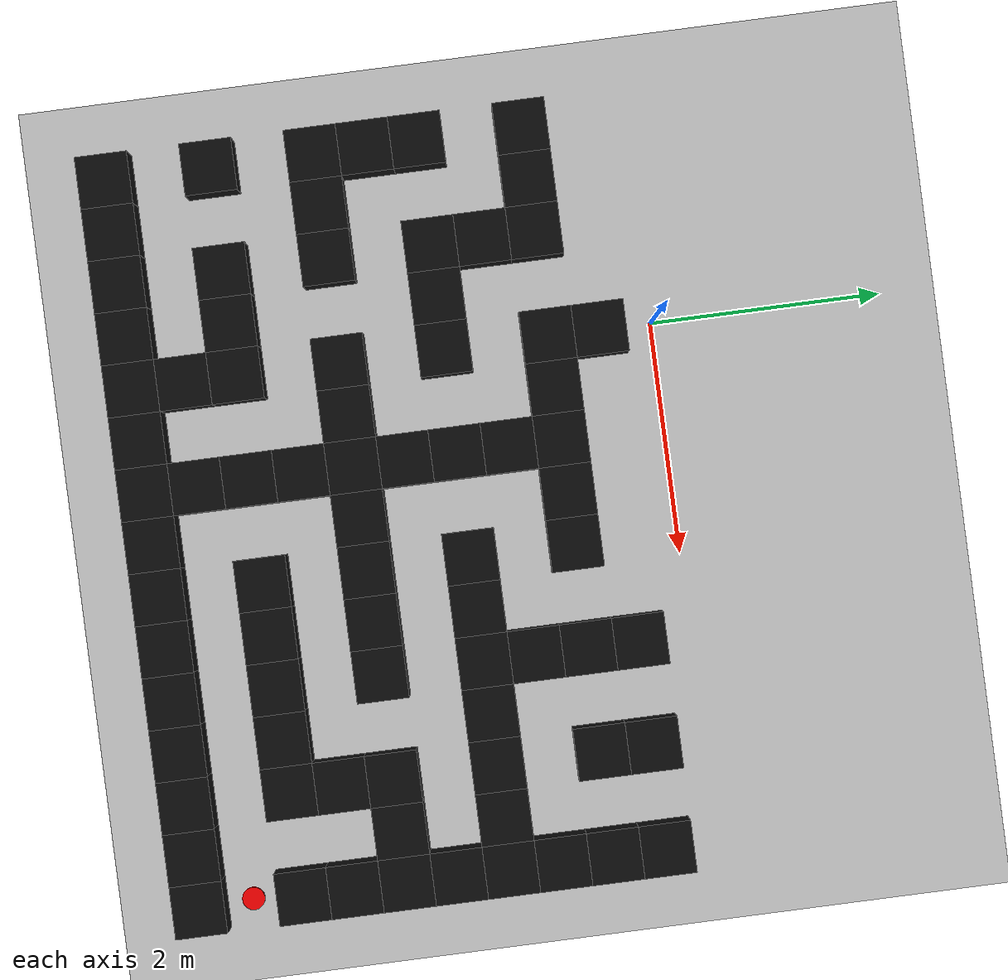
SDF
<sdf version="1.9">
 <world name="complex_maze_world">
  <model name="ground_plane">
   <static>true</static>
   <link name="link">
    <collision name="collision">
     <geometry><plane><normal>0 0 1</normal><size>30 30</size></plane></geometry>
    </collision>
    <visual name="visual">
     <geometry><plane><normal>0 0 1</normal><size>30 30</size></plane></geometry>
     <material><ambient>0.82 0.82 0.82 1</ambient><diffuse>0.82 0.82 0.82 1</diffuse></material>
    </visual>
   </link>
  </model>
  <model name="wall_125">
   <static>true</static>
   <pose>0.000 -0.450 0.140 0 0 0</pose>
   <link name="link">
    <collision name="collision"><geometry><box><size>0.450 0.450 0.280</size></box></geometry></collision>
    <visual name="visual">
     <geometry><box><size>0.450 0.450 0.280</size></box></geometry>
     <material><ambient>0.05 0.05 0.05 1</ambient><diffuse>0.05 0.05 0.05 1</diffuse></material>
    </visual>
   </link>
  </model>
  <model name="wall_126">
   <static>true</static>
   <pose>2.700 -0.450 0.140 0 0 0</pose>
   <link name="link">
    <collision name="collision"><geometry><box><size>0.450 0.450 0.280</size></box></geometry></collision>
    <visual name="visual">
     <geometry><box><size>0.450 0.450 0.280</size></box></geometry>
     <material><ambient>0.05 0.05 0.05 1</ambient><diffuse>0.05 0.05 0.05 1</diffuse></material>
    </visual>
   </link>
  </model>
  <model name="wall_127">
   <static>true</static>
   <pose>3.600 -0.450 0.140 0 0 0</pose>
   <link name="link">
    <collision name="collision"><geometry><box><size>0.450 0.450 0.280</size></box></geometry></collision>
    <visual name="visual">
     <geometry><box><size>0.450 0.450 0.280</size></box></geometry>
     <material><ambient>0.05 0.05 0.05 1</ambient><diffuse>0.05 0.05 0.05 1</diffuse></material>
    </visual>
   </link>
  </model>
  <model name="wall_128">
   <static>true</static>
   <pose>4.500 -0.450 0.140 0 0 0</pose>
   <link name="link">
    <collision name="collision"><geometry><box><size>0.450 0.450 0.280</size></box></geometry></collision>
    <visual name="visual">
     <geometry><box><size>0.450 0.450 0.280</size></box></geometry>
     <material><ambient>0.05 0.05 0.05 1</ambient><diffuse>0.05 0.05 0.05 1</diffuse></material>
    </visual>
   </link>
  </model>
  <model name="wall_134">
   <static>true</static>
   <pose>-1.800 -0.900 0.140 0 0 0</pose>
   <link name="link">
    <collision name="collision"><geometry><box><size>0.450 0.450 0.280</size></box></geometry></collision>
    <visual name="visual">
     <geometry><box><size>0.450 0.450 0.280</size></box></geometry>
     <material><ambient>0.05 0.05 0.05 1</ambient><diffuse>0.05 0.05 0.05 1</diffuse></material>
    </visual>
   </link>
  </model>
  <model name="wall_135">
   <static>true</static>
   <pose>-1.350 -0.900 0.140 0 0 0</pose>
   <link name="link">
    <collision name="collision"><geometry><box><size>0.450 0.450 0.280</size></box></geometry></collision>
    <visual name="visual">
     <geometry><box><size>0.450 0.450 0.280</size></box></geometry>
     <material><ambient>0.05 0.05 0.05 1</ambient><diffuse>0.05 0.05 0.05 1</diffuse></material>
    </visual>
   </link>
  </model>
  <model name="wall_136">
   <static>true</static>
   <pose>-0.900 -0.900 0.140 0 0 0</pose>
   <link name="link">
    <collision name="collision"><geometry><box><size>0.450 0.450 0.280</size></box></geometry></collision>
    <visual name="visual">
     <geometry><box><size>0.450 0.450 0.280</size></box></geometry>
     <material><ambient>0.05 0.05 0.05 1</ambient><diffuse>0.05 0.05 0.05 1</diffuse></material>
    </visual>
   </link>
  </model>
  <model name="wall_137">
   <static>true</static>
   <pose>0.000 -0.900 0.140 0 0 0</pose>
   <link name="link">
    <collision name="collision"><geometry><box><size>0.450 0.450 0.280</size></box></geometry></collision>
    <visual name="visual">
     <geometry><box><size>0.450 0.450 0.280</size></box></geometry>
     <material><ambient>0.05 0.05 0.05 1</ambient><diffuse>0.05 0.05 0.05 1</diffuse></material>
    </visual>
   </link>
  </model>
  <model name="wall_138">
   <static>true</static>
   <pose>0.450 -0.900 0.140 0 0 0</pose>
   <link name="link">
    <collision name="collision"><geometry><box><size>0.450 0.450 0.280</size></box></geometry></collision>
    <visual name="visual">
     <geometry><box><size>0.450 0.450 0.280</size></box></geometry>
     <material><ambient>0.05 0.05 0.05 1</ambient><diffuse>0.05 0.05 0.05 1</diffuse></material>
    </visual>
   </link>
  </model>
  <model name="wall_139">
   <static>true</static>
   <pose>0.900 -0.900 0.140 0 0 0</pose>
   <link name="link">
    <collision name="collision"><geometry><box><size>0.450 0.450 0.280</size></box></geometry></collision>
    <visual name="visual">
     <geometry><box><size>0.450 0.450 0.280</size></box></geometry>
     <material><ambient>0.05 0.05 0.05 1</ambient><diffuse>0.05 0.05 0.05 1</diffuse></material>
    </visual>
   </link>
  </model>
  <model name="wall_140">
   <static>true</static>
   <pose>1.350 -0.900 0.140 0 0 0</pose>
   <link name="link">
    <collision name="collision"><geometry><box><size>0.450 0.450 0.280</size></box></geometry></collision>
    <visual name="visual">
     <geometry><box><size>0.450 0.450 0.280</size></box></geometry>
     <material><ambient>0.05 0.05 0.05 1</ambient><diffuse>0.05 0.05 0.05 1</diffuse></material>
    </visual>
   </link>
  </model>
  <model name="wall_141">
   <static>true</static>
   <pose>1.800 -0.900 0.140 0 0 0</pose>
   <link name="link">
    <collision name="collision"><geometry><box><size>0.450 0.450 0.280</size></box></geometry></collision>
    <visual name="visual">
     <geometry><box><size>0.450 0.450 0.280</size></box></geometry>
     <material><ambient>0.05 0.05 0.05 1</ambient><diffuse>0.05 0.05 0.05 1</diffuse></material>
    </visual>
   </link>
  </model>
  <model name="wall_142">
   <static>true</static>
   <pose>2.700 -0.900 0.140 0 0 0</pose>
   <link name="link">
    <collision name="collision"><geometry><box><size>0.450 0.450 0.280</size></box></geometry></collision>
    <visual name="visual">
     <geometry><box><size>0.450 0.450 0.280</size></box></geometry>
     <material><ambient>0.05 0.05 0.05 1</ambient><diffuse>0.05 0.05 0.05 1</diffuse></material>
    </visual>
   </link>
  </model>
  <model name="wall_143">
   <static>true</static>
   <pose>3.600 -0.900 0.140 0 0 0</pose>
   <link name="link">
    <collision name="collision"><geometry><box><size>0.450 0.450 0.280</size></box></geometry></collision>
    <visual name="visual">
     <geometry><box><size>0.450 0.450 0.280</size></box></geometry>
     <material><ambient>0.05 0.05 0.05 1</ambient><diffuse>0.05 0.05 0.05 1</diffuse></material>
    </visual>
   </link>
  </model>
  <model name="wall_144">
   <static>true</static>
   <pose>4.500 -0.900 0.140 0 0 0</pose>
   <link name="link">
    <collision name="collision"><geometry><box><size>0.450 0.450 0.280</size></box></geometry></collision>
    <visual name="visual">
     <geometry><box><size>0.450 0.450 0.280</size></box></geometry>
     <material><ambient>0.05 0.05 0.05 1</ambient><diffuse>0.05 0.05 0.05 1</diffuse></material>
    </visual>
   </link>
  </model>
  <model name="wall_146">
   <static>true</static>
   <pose>-0.900 -1.350 0.140 0 0 0</pose>
   <link name="link">
    <collision name="collision"><geometry><box><size>0.450 0.450 0.280</size></box></geometry></collision>
    <visual name="visual">
     <geometry><box><size>0.450 0.450 0.280</size></box></geometry>
     <material><ambient>0.05 0.05 0.05 1</ambient><diffuse>0.05 0.05 0.05 1</diffuse></material>
    </visual>
   </link>
  </model>
  <model name="wall_147">
   <static>true</static>
   <pose>0.900 -1.350 0.140 0 0 0</pose>
   <link name="link">
    <collision name="collision"><geometry><box><size>0.450 0.450 0.280</size></box></geometry></collision>
    <visual name="visual">
     <geometry><box><size>0.450 0.450 0.280</size></box></geometry>
     <material><ambient>0.05 0.05 0.05 1</ambient><diffuse>0.05 0.05 0.05 1</diffuse></material>
    </visual>
   </link>
  </model>
  <model name="wall_148">
   <static>true</static>
   <pose>2.700 -1.350 0.140 0 0 0</pose>
   <link name="link">
    <collision name="collision"><geometry><box><size>0.450 0.450 0.280</size></box></geometry></collision>
    <visual name="visual">
     <geometry><box><size>0.450 0.450 0.280</size></box></geometry>
     <material><ambient>0.05 0.05 0.05 1</ambient><diffuse>0.05 0.05 0.05 1</diffuse></material>
    </visual>
   </link>
  </model>
  <model name="wall_149">
   <static>true</static>
   <pose>4.500 -1.350 0.140 0 0 0</pose>
   <link name="link">
    <collision name="collision"><geometry><box><size>0.450 0.450 0.280</size></box></geometry></collision>
    <visual name="visual">
     <geometry><box><size>0.450 0.450 0.280</size></box></geometry>
     <material><ambient>0.05 0.05 0.05 1</ambient><diffuse>0.05 0.05 0.05 1</diffuse></material>
    </visual>
   </link>
  </model>
  <model name="wall_156">
   <static>true</static>
   <pose>-1.800 -1.800 0.140 0 0 0</pose>
   <link name="link">
    <collision name="collision"><geometry><box><size>0.450 0.450 0.280</size></box></geometry></collision>
    <visual name="visual">
     <geometry><box><size>0.450 0.450 0.280</size></box></geometry>
     <material><ambient>0.05 0.05 0.05 1</ambient><diffuse>0.05 0.05 0.05 1</diffuse></material>
    </visual>
   </link>
  </model>
  <model name="wall_157">
   <static>true</static>
   <pose>-0.900 -1.800 0.140 0 0 0</pose>
   <link name="link">
    <collision name="collision"><geometry><box><size>0.450 0.450 0.280</size></box></geometry></collision>
    <visual name="visual">
     <geometry><box><size>0.450 0.450 0.280</size></box></geometry>
     <material><ambient>0.05 0.05 0.05 1</ambient><diffuse>0.05 0.05 0.05 1</diffuse></material>
    </visual>
   </link>
  </model>
  <model name="wall_158">
   <static>true</static>
   <pose>-0.450 -1.800 0.140 0 0 0</pose>
   <link name="link">
    <collision name="collision"><geometry><box><size>0.450 0.450 0.280</size></box></geometry></collision>
    <visual name="visual">
     <geometry><box><size>0.450 0.450 0.280</size></box></geometry>
     <material><ambient>0.05 0.05 0.05 1</ambient><diffuse>0.05 0.05 0.05 1</diffuse></material>
    </visual>
   </link>
  </model>
  <model name="wall_159">
   <static>true</static>
   <pose>0.000 -1.800 0.140 0 0 0</pose>
   <link name="link">
    <collision name="collision"><geometry><box><size>0.450 0.450 0.280</size></box></geometry></collision>
    <visual name="visual">
     <geometry><box><size>0.450 0.450 0.280</size></box></geometry>
     <material><ambient>0.05 0.05 0.05 1</ambient><diffuse>0.05 0.05 0.05 1</diffuse></material>
    </visual>
   </link>
  </model>
  <model name="wall_160">
   <static>true</static>
   <pose>0.900 -1.800 0.140 0 0 0</pose>
   <link name="link">
    <collision name="collision"><geometry><box><size>0.450 0.450 0.280</size></box></geometry></collision>
    <visual name="visual">
     <geometry><box><size>0.450 0.450 0.280</size></box></geometry>
     <material><ambient>0.05 0.05 0.05 1</ambient><diffuse>0.05 0.05 0.05 1</diffuse></material>
    </visual>
   </link>
  </model>
  <model name="wall_161">
   <static>true</static>
   <pose>1.800 -1.800 0.140 0 0 0</pose>
   <link name="link">
    <collision name="collision"><geometry><box><size>0.450 0.450 0.280</size></box></geometry></collision>
    <visual name="visual">
     <geometry><box><size>0.450 0.450 0.280</size></box></geometry>
     <material><ambient>0.05 0.05 0.05 1</ambient><diffuse>0.05 0.05 0.05 1</diffuse></material>
    </visual>
   </link>
  </model>
  <model name="wall_162">
   <static>true</static>
   <pose>2.250 -1.800 0.140 0 0 0</pose>
   <link name="link">
    <collision name="collision"><geometry><box><size>0.450 0.450 0.280</size></box></geometry></collision>
    <visual name="visual">
     <geometry><box><size>0.450 0.450 0.280</size></box></geometry>
     <material><ambient>0.05 0.05 0.05 1</ambient><diffuse>0.05 0.05 0.05 1</diffuse></material>
    </visual>
   </link>
  </model>
  <model name="wall_163">
   <static>true</static>
   <pose>2.700 -1.800 0.140 0 0 0</pose>
   <link name="link">
    <collision name="collision"><geometry><box><size>0.450 0.450 0.280</size></box></geometry></collision>
    <visual name="visual">
     <geometry><box><size>0.450 0.450 0.280</size></box></geometry>
     <material><ambient>0.05 0.05 0.05 1</ambient><diffuse>0.05 0.05 0.05 1</diffuse></material>
    </visual>
   </link>
  </model>
  <model name="wall_164">
   <static>true</static>
   <pose>3.150 -1.800 0.140 0 0 0</pose>
   <link name="link">
    <collision name="collision"><geometry><box><size>0.450 0.450 0.280</size></box></geometry></collision>
    <visual name="visual">
     <geometry><box><size>0.450 0.450 0.280</size></box></geometry>
     <material><ambient>0.05 0.05 0.05 1</ambient><diffuse>0.05 0.05 0.05 1</diffuse></material>
    </visual>
   </link>
  </model>
  <model name="wall_165">
   <static>true</static>
   <pose>3.600 -1.800 0.140 0 0 0</pose>
   <link name="link">
    <collision name="collision"><geometry><box><size>0.450 0.450 0.280</size></box></geometry></collision>
    <visual name="visual">
     <geometry><box><size>0.450 0.450 0.280</size></box></geometry>
     <material><ambient>0.05 0.05 0.05 1</ambient><diffuse>0.05 0.05 0.05 1</diffuse></material>
    </visual>
   </link>
  </model>
  <model name="wall_166">
   <static>true</static>
   <pose>4.050 -1.800 0.140 0 0 0</pose>
   <link name="link">
    <collision name="collision"><geometry><box><size>0.450 0.450 0.280</size></box></geometry></collision>
    <visual name="visual">
     <geometry><box><size>0.450 0.450 0.280</size></box></geometry>
     <material><ambient>0.05 0.05 0.05 1</ambient><diffuse>0.05 0.05 0.05 1</diffuse></material>
    </visual>
   </link>
  </model>
  <model name="wall_167">
   <static>true</static>
   <pose>4.500 -1.800 0.140 0 0 0</pose>
   <link name="link">
    <collision name="collision"><geometry><box><size>0.450 0.450 0.280</size></box></geometry></collision>
    <visual name="visual">
     <geometry><box><size>0.450 0.450 0.280</size></box></geometry>
     <material><ambient>0.05 0.05 0.05 1</ambient><diffuse>0.05 0.05 0.05 1</diffuse></material>
    </visual>
   </link>
  </model>
  <model name="wall_169">
   <static>true</static>
   <pose>-1.800 -2.250 0.140 0 0 0</pose>
   <link name="link">
    <collision name="collision"><geometry><box><size>0.450 0.450 0.280</size></box></geometry></collision>
    <visual name="visual">
     <geometry><box><size>0.450 0.450 0.280</size></box></geometry>
     <material><ambient>0.05 0.05 0.05 1</ambient><diffuse>0.05 0.05 0.05 1</diffuse></material>
    </visual>
   </link>
  </model>
  <model name="wall_170">
   <static>true</static>
   <pose>0.900 -2.250 0.140 0 0 0</pose>
   <link name="link">
    <collision name="collision"><geometry><box><size>0.450 0.450 0.280</size></box></geometry></collision>
    <visual name="visual">
     <geometry><box><size>0.450 0.450 0.280</size></box></geometry>
     <material><ambient>0.05 0.05 0.05 1</ambient><diffuse>0.05 0.05 0.05 1</diffuse></material>
    </visual>
   </link>
  </model>
  <model name="wall_171">
   <static>true</static>
   <pose>4.500 -2.250 0.140 0 0 0</pose>
   <link name="link">
    <collision name="collision"><geometry><box><size>0.450 0.450 0.280</size></box></geometry></collision>
    <visual name="visual">
     <geometry><box><size>0.450 0.450 0.280</size></box></geometry>
     <material><ambient>0.05 0.05 0.05 1</ambient><diffuse>0.05 0.05 0.05 1</diffuse></material>
    </visual>
   </link>
  </model>
  <model name="wall_176">
   <static>true</static>
   <pose>-1.800 -2.700 0.140 0 0 0</pose>
   <link name="link">
    <collision name="collision"><geometry><box><size>0.450 0.450 0.280</size></box></geometry></collision>
    <visual name="visual">
     <geometry><box><size>0.450 0.450 0.280</size></box></geometry>
     <material><ambient>0.05 0.05 0.05 1</ambient><diffuse>0.05 0.05 0.05 1</diffuse></material>
    </visual>
   </link>
  </model>
  <model name="wall_177">
   <static>true</static>
   <pose>-1.350 -2.700 0.140 0 0 0</pose>
   <link name="link">
    <collision name="collision"><geometry><box><size>0.450 0.450 0.280</size></box></geometry></collision>
    <visual name="visual">
     <geometry><box><size>0.450 0.450 0.280</size></box></geometry>
     <material><ambient>0.05 0.05 0.05 1</ambient><diffuse>0.05 0.05 0.05 1</diffuse></material>
    </visual>
   </link>
  </model>
  <model name="wall_178">
   <static>true</static>
   <pose>-0.900 -2.700 0.140 0 0 0</pose>
   <link name="link">
    <collision name="collision"><geometry><box><size>0.450 0.450 0.280</size></box></geometry></collision>
    <visual name="visual">
     <geometry><box><size>0.450 0.450 0.280</size></box></geometry>
     <material><ambient>0.05 0.05 0.05 1</ambient><diffuse>0.05 0.05 0.05 1</diffuse></material>
    </visual>
   </link>
  </model>
  <model name="wall_179">
   <static>true</static>
   <pose>0.000 -2.700 0.140 0 0 0</pose>
   <link name="link">
    <collision name="collision"><geometry><box><size>0.450 0.450 0.280</size></box></geometry></collision>
    <visual name="visual">
     <geometry><box><size>0.450 0.450 0.280</size></box></geometry>
     <material><ambient>0.05 0.05 0.05 1</ambient><diffuse>0.05 0.05 0.05 1</diffuse></material>
    </visual>
   </link>
  </model>
  <model name="wall_180">
   <static>true</static>
   <pose>0.450 -2.700 0.140 0 0 0</pose>
   <link name="link">
    <collision name="collision"><geometry><box><size>0.450 0.450 0.280</size></box></geometry></collision>
    <visual name="visual">
     <geometry><box><size>0.450 0.450 0.280</size></box></geometry>
     <material><ambient>0.05 0.05 0.05 1</ambient><diffuse>0.05 0.05 0.05 1</diffuse></material>
    </visual>
   </link>
  </model>
  <model name="wall_181">
   <static>true</static>
   <pose>0.900 -2.700 0.140 0 0 0</pose>
   <link name="link">
    <collision name="collision"><geometry><box><size>0.450 0.450 0.280</size></box></geometry></collision>
    <visual name="visual">
     <geometry><box><size>0.450 0.450 0.280</size></box></geometry>
     <material><ambient>0.05 0.05 0.05 1</ambient><diffuse>0.05 0.05 0.05 1</diffuse></material>
    </visual>
   </link>
  </model>
  <model name="wall_182">
   <static>true</static>
   <pose>1.350 -2.700 0.140 0 0 0</pose>
   <link name="link">
    <collision name="collision"><geometry><box><size>0.450 0.450 0.280</size></box></geometry></collision>
    <visual name="visual">
     <geometry><box><size>0.450 0.450 0.280</size></box></geometry>
     <material><ambient>0.05 0.05 0.05 1</ambient><diffuse>0.05 0.05 0.05 1</diffuse></material>
    </visual>
   </link>
  </model>
  <model name="wall_183">
   <static>true</static>
   <pose>1.800 -2.700 0.140 0 0 0</pose>
   <link name="link">
    <collision name="collision"><geometry><box><size>0.450 0.450 0.280</size></box></geometry></collision>
    <visual name="visual">
     <geometry><box><size>0.450 0.450 0.280</size></box></geometry>
     <material><ambient>0.05 0.05 0.05 1</ambient><diffuse>0.05 0.05 0.05 1</diffuse></material>
    </visual>
   </link>
  </model>
  <model name="wall_184">
   <static>true</static>
   <pose>2.250 -2.700 0.140 0 0 0</pose>
   <link name="link">
    <collision name="collision"><geometry><box><size>0.450 0.450 0.280</size></box></geometry></collision>
    <visual name="visual">
     <geometry><box><size>0.450 0.450 0.280</size></box></geometry>
     <material><ambient>0.05 0.05 0.05 1</ambient><diffuse>0.05 0.05 0.05 1</diffuse></material>
    </visual>
   </link>
  </model>
  <model name="wall_185">
   <static>true</static>
   <pose>2.700 -2.700 0.140 0 0 0</pose>
   <link name="link">
    <collision name="collision"><geometry><box><size>0.450 0.450 0.280</size></box></geometry></collision>
    <visual name="visual">
     <geometry><box><size>0.450 0.450 0.280</size></box></geometry>
     <material><ambient>0.05 0.05 0.05 1</ambient><diffuse>0.05 0.05 0.05 1</diffuse></material>
    </visual>
   </link>
  </model>
  <model name="wall_186">
   <static>true</static>
   <pose>3.600 -2.700 0.140 0 0 0</pose>
   <link name="link">
    <collision name="collision"><geometry><box><size>0.450 0.450 0.280</size></box></geometry></collision>
    <visual name="visual">
     <geometry><box><size>0.450 0.450 0.280</size></box></geometry>
     <material><ambient>0.05 0.05 0.05 1</ambient><diffuse>0.05 0.05 0.05 1</diffuse></material>
    </visual>
   </link>
  </model>
  <model name="wall_187">
   <static>true</static>
   <pose>4.050 -2.700 0.140 0 0 0</pose>
   <link name="link">
    <collision name="collision"><geometry><box><size>0.450 0.450 0.280</size></box></geometry></collision>
    <visual name="visual">
     <geometry><box><size>0.450 0.450 0.280</size></box></geometry>
     <material><ambient>0.05 0.05 0.05 1</ambient><diffuse>0.05 0.05 0.05 1</diffuse></material>
    </visual>
   </link>
  </model>
  <model name="wall_188">
   <static>true</static>
   <pose>4.500 -2.700 0.140 0 0 0</pose>
   <link name="link">
    <collision name="collision"><geometry><box><size>0.450 0.450 0.280</size></box></geometry></collision>
    <visual name="visual">
     <geometry><box><size>0.450 0.450 0.280</size></box></geometry>
     <material><ambient>0.05 0.05 0.05 1</ambient><diffuse>0.05 0.05 0.05 1</diffuse></material>
    </visual>
   </link>
  </model>
  <model name="wall_191">
   <static>true</static>
   <pose>0.900 -3.150 0.140 0 0 0</pose>
   <link name="link">
    <collision name="collision"><geometry><box><size>0.450 0.450 0.280</size></box></geometry></collision>
    <visual name="visual">
     <geometry><box><size>0.450 0.450 0.280</size></box></geometry>
     <material><ambient>0.05 0.05 0.05 1</ambient><diffuse>0.05 0.05 0.05 1</diffuse></material>
    </visual>
   </link>
  </model>
  <model name="wall_192">
   <static>true</static>
   <pose>3.600 -3.150 0.140 0 0 0</pose>
   <link name="link">
    <collision name="collision"><geometry><box><size>0.450 0.450 0.280</size></box></geometry></collision>
    <visual name="visual">
     <geometry><box><size>0.450 0.450 0.280</size></box></geometry>
     <material><ambient>0.05 0.05 0.05 1</ambient><diffuse>0.05 0.05 0.05 1</diffuse></material>
    </visual>
   </link>
  </model>
  <model name="wall_193">
   <static>true</static>
   <pose>4.500 -3.150 0.140 0 0 0</pose>
   <link name="link">
    <collision name="collision"><geometry><box><size>0.450 0.450 0.280</size></box></geometry></collision>
    <visual name="visual">
     <geometry><box><size>0.450 0.450 0.280</size></box></geometry>
     <material><ambient>0.05 0.05 0.05 1</ambient><diffuse>0.05 0.05 0.05 1</diffuse></material>
    </visual>
   </link>
  </model>
  <model name="wall_199">
   <static>true</static>
   <pose>-1.800 -3.600 0.140 0 0 0</pose>
   <link name="link">
    <collision name="collision"><geometry><box><size>0.450 0.450 0.280</size></box></geometry></collision>
    <visual name="visual">
     <geometry><box><size>0.450 0.450 0.280</size></box></geometry>
     <material><ambient>0.05 0.05 0.05 1</ambient><diffuse>0.05 0.05 0.05 1</diffuse></material>
    </visual>
   </link>
  </model>
  <model name="wall_200">
   <static>true</static>
   <pose>-0.900 -3.600 0.140 0 0 0</pose>
   <link name="link">
    <collision name="collision"><geometry><box><size>0.450 0.450 0.280</size></box></geometry></collision>
    <visual name="visual">
     <geometry><box><size>0.450 0.450 0.280</size></box></geometry>
     <material><ambient>0.05 0.05 0.05 1</ambient><diffuse>0.05 0.05 0.05 1</diffuse></material>
    </visual>
   </link>
  </model>
  <model name="wall_201">
   <static>true</static>
   <pose>-0.450 -3.600 0.140 0 0 0</pose>
   <link name="link">
    <collision name="collision"><geometry><box><size>0.450 0.450 0.280</size></box></geometry></collision>
    <visual name="visual">
     <geometry><box><size>0.450 0.450 0.280</size></box></geometry>
     <material><ambient>0.05 0.05 0.05 1</ambient><diffuse>0.05 0.05 0.05 1</diffuse></material>
    </visual>
   </link>
  </model>
  <model name="wall_202">
   <static>true</static>
   <pose>0.000 -3.600 0.140 0 0 0</pose>
   <link name="link">
    <collision name="collision"><geometry><box><size>0.450 0.450 0.280</size></box></geometry></collision>
    <visual name="visual">
     <geometry><box><size>0.450 0.450 0.280</size></box></geometry>
     <material><ambient>0.05 0.05 0.05 1</ambient><diffuse>0.05 0.05 0.05 1</diffuse></material>
    </visual>
   </link>
  </model>
  <model name="wall_203">
   <static>true</static>
   <pose>0.900 -3.600 0.140 0 0 0</pose>
   <link name="link">
    <collision name="collision"><geometry><box><size>0.450 0.450 0.280</size></box></geometry></collision>
    <visual name="visual">
     <geometry><box><size>0.450 0.450 0.280</size></box></geometry>
     <material><ambient>0.05 0.05 0.05 1</ambient><diffuse>0.05 0.05 0.05 1</diffuse></material>
    </visual>
   </link>
  </model>
  <model name="wall_204">
   <static>true</static>
   <pose>1.800 -3.600 0.140 0 0 0</pose>
   <link name="link">
    <collision name="collision"><geometry><box><size>0.450 0.450 0.280</size></box></geometry></collision>
    <visual name="visual">
     <geometry><box><size>0.450 0.450 0.280</size></box></geometry>
     <material><ambient>0.05 0.05 0.05 1</ambient><diffuse>0.05 0.05 0.05 1</diffuse></material>
    </visual>
   </link>
  </model>
  <model name="wall_205">
   <static>true</static>
   <pose>2.250 -3.600 0.140 0 0 0</pose>
   <link name="link">
    <collision name="collision"><geometry><box><size>0.450 0.450 0.280</size></box></geometry></collision>
    <visual name="visual">
     <geometry><box><size>0.450 0.450 0.280</size></box></geometry>
     <material><ambient>0.05 0.05 0.05 1</ambient><diffuse>0.05 0.05 0.05 1</diffuse></material>
    </visual>
   </link>
  </model>
  <model name="wall_206">
   <static>true</static>
   <pose>2.700 -3.600 0.140 0 0 0</pose>
   <link name="link">
    <collision name="collision"><geometry><box><size>0.450 0.450 0.280</size></box></geometry></collision>
    <visual name="visual">
     <geometry><box><size>0.450 0.450 0.280</size></box></geometry>
     <material><ambient>0.05 0.05 0.05 1</ambient><diffuse>0.05 0.05 0.05 1</diffuse></material>
    </visual>
   </link>
  </model>
  <model name="wall_207">
   <static>true</static>
   <pose>3.150 -3.600 0.140 0 0 0</pose>
   <link name="link">
    <collision name="collision"><geometry><box><size>0.450 0.450 0.280</size></box></geometry></collision>
    <visual name="visual">
     <geometry><box><size>0.450 0.450 0.280</size></box></geometry>
     <material><ambient>0.05 0.05 0.05 1</ambient><diffuse>0.05 0.05 0.05 1</diffuse></material>
    </visual>
   </link>
  </model>
  <model name="wall_208">
   <static>true</static>
   <pose>3.600 -3.600 0.140 0 0 0</pose>
   <link name="link">
    <collision name="collision"><geometry><box><size>0.450 0.450 0.280</size></box></geometry></collision>
    <visual name="visual">
     <geometry><box><size>0.450 0.450 0.280</size></box></geometry>
     <material><ambient>0.05 0.05 0.05 1</ambient><diffuse>0.05 0.05 0.05 1</diffuse></material>
    </visual>
   </link>
  </model>
  <model name="wall_209">
   <static>true</static>
   <pose>4.500 -3.600 0.140 0 0 0</pose>
   <link name="link">
    <collision name="collision"><geometry><box><size>0.450 0.450 0.280</size></box></geometry></collision>
    <visual name="visual">
     <geometry><box><size>0.450 0.450 0.280</size></box></geometry>
     <material><ambient>0.05 0.05 0.05 1</ambient><diffuse>0.05 0.05 0.05 1</diffuse></material>
    </visual>
   </link>
  </model>
  <model name="wall_211">
   <static>true</static>
   <pose>0.000 -4.050 0.140 0 0 0</pose>
   <link name="link">
    <collision name="collision"><geometry><box><size>0.450 0.450 0.280</size></box></geometry></collision>
    <visual name="visual">
     <geometry><box><size>0.450 0.450 0.280</size></box></geometry>
     <material><ambient>0.05 0.05 0.05 1</ambient><diffuse>0.05 0.05 0.05 1</diffuse></material>
    </visual>
   </link>
  </model>
  <model name="wall_212">
   <static>true</static>
   <pose>0.900 -4.050 0.140 0 0 0</pose>
   <link name="link">
    <collision name="collision"><geometry><box><size>0.450 0.450 0.280</size></box></geometry></collision>
    <visual name="visual">
     <geometry><box><size>0.450 0.450 0.280</size></box></geometry>
     <material><ambient>0.05 0.05 0.05 1</ambient><diffuse>0.05 0.05 0.05 1</diffuse></material>
    </visual>
   </link>
  </model>
  <model name="goal_marker">
   <static>true</static>
   <pose>4.500 -4.050 0.012 0 0 0</pose>
   <link name="link">
    <visual name="visual">
     <geometry><cylinder><radius>0.099</radius><length>0.024</length></cylinder></geometry>
     <material><ambient>1 0 0 1</ambient><diffuse>1 0 0 1</diffuse></material>
    </visual>
   </link>
  </model>
  <model name="wall_219">
   <static>true</static>
   <pose>-1.800 -4.500 0.140 0 0 0</pose>
   <link name="link">
    <collision name="collision"><geometry><box><size>0.450 0.450 0.280</size></box></geometry></collision>
    <visual name="visual">
     <geometry><box><size>0.450 0.450 0.280</size></box></geometry>
     <material><ambient>0.05 0.05 0.05 1</ambient><diffuse>0.05 0.05 0.05 1</diffuse></material>
    </visual>
   </link>
  </model>
  <model name="wall_220">
   <static>true</static>
   <pose>-1.350 -4.500 0.140 0 0 0</pose>
   <link name="link">
    <collision name="collision"><geometry><box><size>0.450 0.450 0.280</size></box></geometry></collision>
    <visual name="visual">
     <geometry><box><size>0.450 0.450 0.280</size></box></geometry>
     <material><ambient>0.05 0.05 0.05 1</ambient><diffuse>0.05 0.05 0.05 1</diffuse></material>
    </visual>
   </link>
  </model>
  <model name="wall_221">
   <static>true</static>
   <pose>-0.900 -4.500 0.140 0 0 0</pose>
   <link name="link">
    <collision name="collision"><geometry><box><size>0.450 0.450 0.280</size></box></geometry></collision>
    <visual name="visual">
     <geometry><box><size>0.450 0.450 0.280</size></box></geometry>
     <material><ambient>0.05 0.05 0.05 1</ambient><diffuse>0.05 0.05 0.05 1</diffuse></material>
    </visual>
   </link>
  </model>
  <model name="wall_222">
   <static>true</static>
   <pose>-0.450 -4.500 0.140 0 0 0</pose>
   <link name="link">
    <collision name="collision"><geometry><box><size>0.450 0.450 0.280</size></box></geometry></collision>
    <visual name="visual">
     <geometry><box><size>0.450 0.450 0.280</size></box></geometry>
     <material><ambient>0.05 0.05 0.05 1</ambient><diffuse>0.05 0.05 0.05 1</diffuse></material>
    </visual>
   </link>
  </model>
  <model name="wall_223">
   <static>true</static>
   <pose>0.000 -4.500 0.140 0 0 0</pose>
   <link name="link">
    <collision name="collision"><geometry><box><size>0.450 0.450 0.280</size></box></geometry></collision>
    <visual name="visual">
     <geometry><box><size>0.450 0.450 0.280</size></box></geometry>
     <material><ambient>0.05 0.05 0.05 1</ambient><diffuse>0.05 0.05 0.05 1</diffuse></material>
    </visual>
   </link>
  </model>
  <model name="wall_224">
   <static>true</static>
   <pose>0.450 -4.500 0.140 0 0 0</pose>
   <link name="link">
    <collision name="collision"><geometry><box><size>0.450 0.450 0.280</size></box></geometry></collision>
    <visual name="visual">
     <geometry><box><size>0.450 0.450 0.280</size></box></geometry>
     <material><ambient>0.05 0.05 0.05 1</ambient><diffuse>0.05 0.05 0.05 1</diffuse></material>
    </visual>
   </link>
  </model>
  <model name="wall_225">
   <static>true</static>
   <pose>0.900 -4.500 0.140 0 0 0</pose>
   <link name="link">
    <collision name="collision"><geometry><box><size>0.450 0.450 0.280</size></box></geometry></collision>
    <visual name="visual">
     <geometry><box><size>0.450 0.450 0.280</size></box></geometry>
     <material><ambient>0.05 0.05 0.05 1</ambient><diffuse>0.05 0.05 0.05 1</diffuse></material>
    </visual>
   </link>
  </model>
  <model name="wall_226">
   <static>true</static>
   <pose>1.350 -4.500 0.140 0 0 0</pose>
   <link name="link">
    <collision name="collision"><geometry><box><size>0.450 0.450 0.280</size></box></geometry></collision>
    <visual name="visual">
     <geometry><box><size>0.450 0.450 0.280</size></box></geometry>
     <material><ambient>0.05 0.05 0.05 1</ambient><diffuse>0.05 0.05 0.05 1</diffuse></material>
    </visual>
   </link>
  </model>
  <model name="wall_227">
   <static>true</static>
   <pose>1.800 -4.500 0.140 0 0 0</pose>
   <link name="link">
    <collision name="collision"><geometry><box><size>0.450 0.450 0.280</size></box></geometry></collision>
    <visual name="visual">
     <geometry><box><size>0.450 0.450 0.280</size></box></geometry>
     <material><ambient>0.05 0.05 0.05 1</ambient><diffuse>0.05 0.05 0.05 1</diffuse></material>
    </visual>
   </link>
  </model>
  <model name="wall_228">
   <static>true</static>
   <pose>2.250 -4.500 0.140 0 0 0</pose>
   <link name="link">
    <collision name="collision"><geometry><box><size>0.450 0.450 0.280</size></box></geometry></collision>
    <visual name="visual">
     <geometry><box><size>0.450 0.450 0.280</size></box></geometry>
     <material><ambient>0.05 0.05 0.05 1</ambient><diffuse>0.05 0.05 0.05 1</diffuse></material>
    </visual>
   </link>
  </model>
  <model name="wall_229">
   <static>true</static>
   <pose>2.700 -4.500 0.140 0 0 0</pose>
   <link name="link">
    <collision name="collision"><geometry><box><size>0.450 0.450 0.280</size></box></geometry></collision>
    <visual name="visual">
     <geometry><box><size>0.450 0.450 0.280</size></box></geometry>
     <material><ambient>0.05 0.05 0.05 1</ambient><diffuse>0.05 0.05 0.05 1</diffuse></material>
    </visual>
   </link>
  </model>
  <model name="wall_230">
   <static>true</static>
   <pose>3.150 -4.500 0.140 0 0 0</pose>
   <link name="link">
    <collision name="collision"><geometry><box><size>0.450 0.450 0.280</size></box></geometry></collision>
    <visual name="visual">
     <geometry><box><size>0.450 0.450 0.280</size></box></geometry>
     <material><ambient>0.05 0.05 0.05 1</ambient><diffuse>0.05 0.05 0.05 1</diffuse></material>
    </visual>
   </link>
  </model>
  <model name="wall_231">
   <static>true</static>
   <pose>3.600 -4.500 0.140 0 0 0</pose>
   <link name="link">
    <collision name="collision"><geometry><box><size>0.450 0.450 0.280</size></box></geometry></collision>
    <visual name="visual">
     <geometry><box><size>0.450 0.450 0.280</size></box></geometry>
     <material><ambient>0.05 0.05 0.05 1</ambient><diffuse>0.05 0.05 0.05 1</diffuse></material>
    </visual>
   </link>
  </model>
  <model name="wall_232">
   <static>true</static>
   <pose>4.050 -4.500 0.140 0 0 0</pose>
   <link name="link">
    <collision name="collision"><geometry><box><size>0.450 0.450 0.280</size></box></geometry></collision>
    <visual name="visual">
     <geometry><box><size>0.450 0.450 0.280</size></box></geometry>
     <material><ambient>0.05 0.05 0.05 1</ambient><diffuse>0.05 0.05 0.05 1</diffuse></material>
    </visual>
   </link>
  </model>
  <model name="wall_233">
   <static>true</static>
   <pose>4.500 -4.500 0.140 0 0 0</pose>
   <link name="link">
    <collision name="collision"><geometry><box><size>0.450 0.450 0.280</size></box></geometry></collision>
    <visual name="visual">
     <geometry><box><size>0.450 0.450 0.280</size></box></geometry>
     <material><ambient>0.05 0.05 0.05 1</ambient><diffuse>0.05 0.05 0.05 1</diffuse></material>
    </visual>
   </link>
  </model>
 </world>
</sdf>
